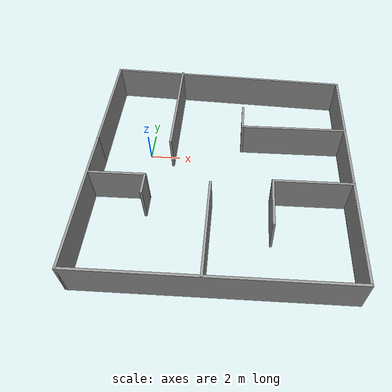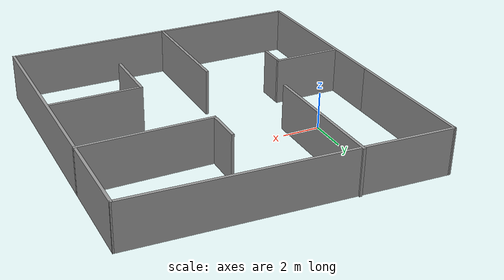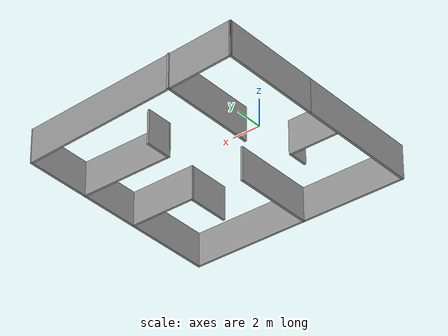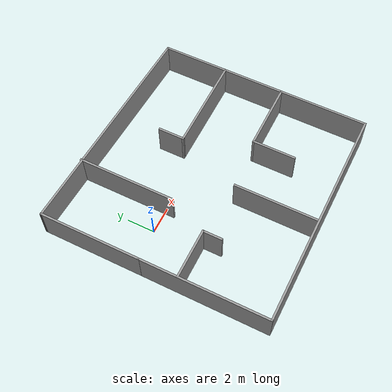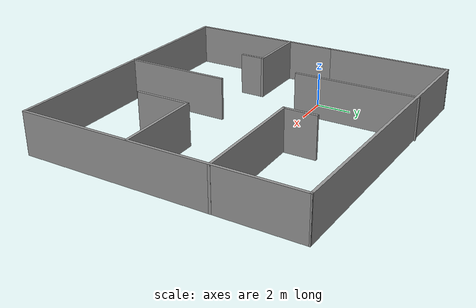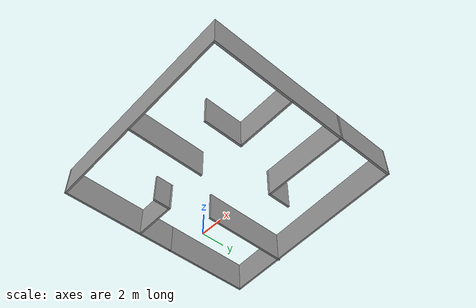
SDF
<?xml version='1.0'?>
<sdf version='1.7'>
  <model name='P1_model'>
    <pose>5.00501 -1.7481 0 0 -0 0</pose>
    <link name='Wall_0'>
      <collision name='Wall_0_Collision'>
        <geometry>
          <box>
            <size>7.5 0.15 2.5</size>
          </box>
        </geometry>
        <pose>0 0 1.25 0 -0 0</pose>
      </collision>
      <visual name='Wall_0_Visual'>
        <pose>0 0 1.25 0 -0 0</pose>
        <geometry>
          <box>
            <size>7.5 0.15 2.5</size>
          </box>
        </geometry>
        <material>
          <script>
            <uri>file://media/materials/scripts/gazebo.material</uri>
            <name>Gazebo/Grey</name>
          </script>
          <ambient>1 1 1 1</ambient>
        </material>
        <meta>
          <layer>0</layer>
        </meta>
      </visual>
      <pose>-8.17501 4.6731 0 0 -0 1.5708</pose>
    </link>
    <link name='Wall_26'>
      <collision name='Wall_26_Collision'>
        <geometry>
          <box>
            <size>9.5 0.15 2.5</size>
          </box>
        </geometry>
        <pose>0 0 1.25 0 -0 0</pose>
      </collision>
      <visual name='Wall_26_Visual'>
        <pose>0 0 1.25 0 -0 0</pose>
        <geometry>
          <box>
            <size>9.5 0.15 2.5</size>
          </box>
        </geometry>
        <material>
          <script>
            <uri>file://media/materials/scripts/gazebo.material</uri>
            <name>Gazebo/Grey</name>
          </script>
          <ambient>1 1 1 1</ambient>
        </material>
        <meta>
          <layer>0</layer>
        </meta>
      </visual>
      <pose>-8.17501 -3.6769 0 0 -0 -1.5708</pose>
    </link>
    <link name='Wall_27'>
      <collision name='Wall_27_Collision'>
        <geometry>
          <box>
            <size>16.5 0.15 2.5</size>
          </box>
        </geometry>
        <pose>0 0 1.25 0 -0 0</pose>
      </collision>
      <visual name='Wall_27_Visual'>
        <pose>0 0 1.25 0 -0 0</pose>
        <geometry>
          <box>
            <size>16.5 0.15 2.5</size>
          </box>
        </geometry>
        <material>
          <script>
            <uri>file://media/materials/scripts/gazebo.material</uri>
            <name>Gazebo/Grey</name>
          </script>
          <ambient>1 1 1 1</ambient>
        </material>
        <meta>
          <layer>0</layer>
        </meta>
      </visual>
      <pose>-8e-06 -8.3519 0 0 -0 0</pose>
    </link>
    <link name='Wall_28'>
      <collision name='Wall_28_Collision'>
        <geometry>
          <box>
            <size>16 0.15 2.5</size>
          </box>
        </geometry>
        <pose>0 0 1.25 0 -0 0</pose>
      </collision>
      <visual name='Wall_28_Visual'>
        <pose>0 0 1.25 0 -0 0</pose>
        <geometry>
          <box>
            <size>16 0.15 2.5</size>
          </box>
        </geometry>
        <material>
          <script>
            <uri>file://media/materials/scripts/gazebo.material</uri>
            <name>Gazebo/Grey</name>
          </script>
          <ambient>1 1 1 1</ambient>
        </material>
        <meta>
          <layer>0</layer>
        </meta>
      </visual>
      <pose>8.17499 -0.426896 0 0 -0 1.5708</pose>
    </link>
    <link name='Wall_29'>
      <collision name='Wall_29_Collision'>
        <geometry>
          <box>
            <size>16.5221 0.15 2.5</size>
          </box>
        </geometry>
        <pose>0 0 1.25 0 -0 0</pose>
      </collision>
      <visual name='Wall_29_Visual'>
        <pose>0 0 1.25 0 -0 0</pose>
        <geometry>
          <box>
            <size>16.5221 0.15 2.5</size>
          </box>
        </geometry>
        <material>
          <script>
            <uri>file://media/materials/scripts/gazebo.material</uri>
            <name>Gazebo/Grey</name>
          </script>
          <ambient>1 1 1 1</ambient>
        </material>
        <meta>
          <layer>0</layer>
        </meta>
      </visual>
      <pose>-8e-06 7.9231 0 0 -0 3.08965</pose>
    </link>
    <link name='Wall_32'>
      <collision name='Wall_32_Collision'>
        <geometry>
          <box>
            <size>7.25 0.15 2.5</size>
          </box>
        </geometry>
        <pose>0 0 1.25 0 -0 0</pose>
      </collision>
      <visual name='Wall_32_Visual'>
        <pose>0 0 1.25 0 -0 0</pose>
        <geometry>
          <box>
            <size>7.25 0.15 2.5</size>
          </box>
        </geometry>
        <material>
          <script>
            <uri>file://media/materials/scripts/gazebo.material</uri>
            <name>Gazebo/Grey</name>
          </script>
          <ambient>1 1 1 1</ambient>
        </material>
        <meta>
          <layer>0</layer>
        </meta>
      </visual>
      <pose>-3.34795 4.62518 0 0 -0 -1.5708</pose>
    </link>
    <link name='Wall_34'>
      <collision name='Wall_34_Collision'>
        <geometry>
          <box>
            <size>7 0.15 2.5</size>
          </box>
        </geometry>
        <pose>0 0 1.25 0 -0 0</pose>
      </collision>
      <visual name='Wall_34_Visual'>
        <pose>0 0 1.25 0 -0 0</pose>
        <geometry>
          <box>
            <size>7 0.15 2.5</size>
          </box>
        </geometry>
        <material>
          <script>
            <uri>file://media/materials/scripts/gazebo.material</uri>
            <name>Gazebo/Grey</name>
          </script>
          <ambient>1 1 1 1</ambient>
        </material>
        <meta>
          <layer>0</layer>
        </meta>
      </visual>
      <pose>4.7538 2.67781 0 0 -0 3.14159</pose>
    </link>
    <link name='Wall_35'>
      <collision name='Wall_35_Collision'>
        <geometry>
          <box>
            <size>2 0.15 2.5</size>
          </box>
        </geometry>
        <pose>0 0 1.25 0 -0 0</pose>
      </collision>
      <visual name='Wall_35_Visual'>
        <pose>0 0 1.25 0 -0 0</pose>
        <geometry>
          <box>
            <size>2 0.15 2.5</size>
          </box>
        </geometry>
        <material>
          <script>
            <uri>file://media/materials/scripts/gazebo.material</uri>
            <name>Gazebo/Grey</name>
          </script>
          <ambient>1 1 1 1</ambient>
        </material>
        <meta>
          <layer>0</layer>
        </meta>
      </visual>
      <pose>1.3288 3.60281 0 0 -0 1.5708</pose>
    </link>
    <link name='Wall_37'>
      <collision name='Wall_37_Collision'>
        <geometry>
          <box>
            <size>3.75 0.15 2.5</size>
          </box>
        </geometry>
        <pose>0 0 1.25 0 -0 0</pose>
      </collision>
      <visual name='Wall_37_Visual'>
        <pose>0 0 1.25 0 -0 0</pose>
        <geometry>
          <box>
            <size>3.75 0.15 2.5</size>
          </box>
        </geometry>
        <material>
          <script>
            <uri>file://media/materials/scripts/gazebo.material</uri>
            <name>Gazebo/Grey</name>
          </script>
          <ambient>1 1 1 1</ambient>
        </material>
        <meta>
          <layer>0</layer>
        </meta>
      </visual>
      <pose>-6.35792 -1.82126 0 0 -0 0</pose>
    </link>
    <link name='Wall_38'>
      <collision name='Wall_38_Collision'>
        <geometry>
          <box>
            <size>1.5 0.15 2.5</size>
          </box>
        </geometry>
        <pose>0 0 1.25 0 -0 0</pose>
      </collision>
      <visual name='Wall_38_Visual'>
        <pose>0 0 1.25 0 -0 0</pose>
        <geometry>
          <box>
            <size>1.5 0.15 2.5</size>
          </box>
        </geometry>
        <material>
          <script>
            <uri>file://media/materials/scripts/gazebo.material</uri>
            <name>Gazebo/Grey</name>
          </script>
          <ambient>1 1 1 1</ambient>
        </material>
        <meta>
          <layer>0</layer>
        </meta>
      </visual>
      <pose>-4.55793 -2.49627 0 0 -0 -1.5708</pose>
    </link>
    <link name='Wall_40'>
      <collision name='Wall_40_Collision'>
        <geometry>
          <box>
            <size>5 0.15 2.5</size>
          </box>
        </geometry>
        <pose>0 0 1.25 0 -0 0</pose>
      </collision>
      <visual name='Wall_40_Visual'>
        <pose>0 0 1.25 0 -0 0</pose>
        <geometry>
          <box>
            <size>5 0.15 2.5</size>
          </box>
        </geometry>
        <material>
          <script>
            <uri>file://media/materials/scripts/gazebo.material</uri>
            <name>Gazebo/Grey</name>
          </script>
          <ambient>1 1 1 1</ambient>
        </material>
        <meta>
          <layer>0</layer>
        </meta>
      </visual>
      <pose>5.73186 -1.86205 0 0 -0 3.14159</pose>
    </link>
    <link name='Wall_41'>
      <collision name='Wall_41_Collision'>
        <geometry>
          <box>
            <size>3.25 0.15 2.5</size>
          </box>
        </geometry>
        <pose>0 0 1.25 0 -0 0</pose>
      </collision>
      <visual name='Wall_41_Visual'>
        <pose>0 0 1.25 0 -0 0</pose>
        <geometry>
          <box>
            <size>3.25 0.15 2.5</size>
          </box>
        </geometry>
        <material>
          <script>
            <uri>file://media/materials/scripts/gazebo.material</uri>
            <name>Gazebo/Grey</name>
          </script>
          <ambient>1 1 1 1</ambient>
        </material>
        <meta>
          <layer>0</layer>
        </meta>
      </visual>
      <pose>3.30686 -3.41205 0 0 -0 -1.5708</pose>
    </link>
    <link name='Wall_43'>
      <collision name='Wall_43_Collision'>
        <geometry>
          <box>
            <size>6.25 0.15 2.5</size>
          </box>
        </geometry>
        <pose>0 0 1.25 0 -0 0</pose>
      </collision>
      <visual name='Wall_43_Visual'>
        <pose>0 0 1.25 0 -0 0</pose>
        <geometry>
          <box>
            <size>6.25 0.15 2.5</size>
          </box>
        </geometry>
        <material>
          <script>
            <uri>file://media/materials/scripts/gazebo.material</uri>
            <name>Gazebo/Grey</name>
          </script>
          <ambient>1 1 1 1</ambient>
        </material>
        <meta>
          <layer>0</layer>
        </meta>
      </visual>
      <pose>-0.489974 -5.25639 0 0 -0 1.5708</pose>
    </link>
    <static>1</static>
  </model>
</sdf>
